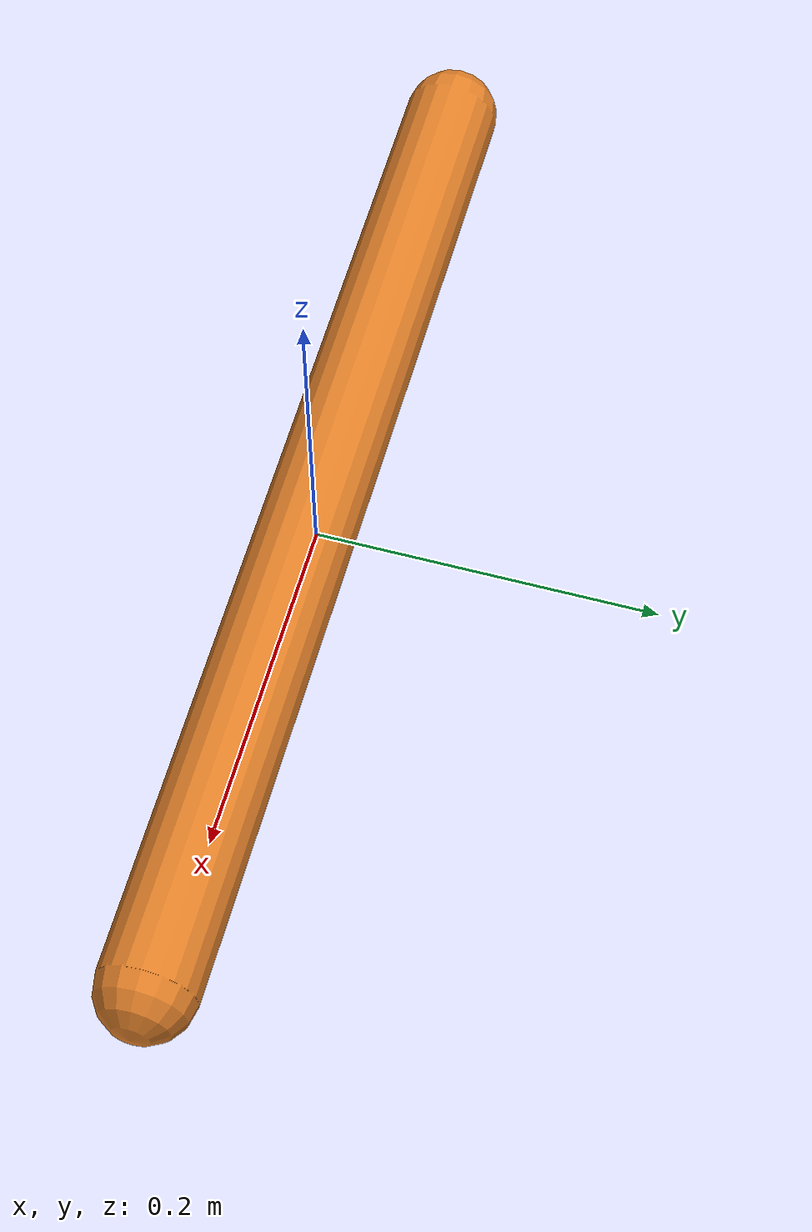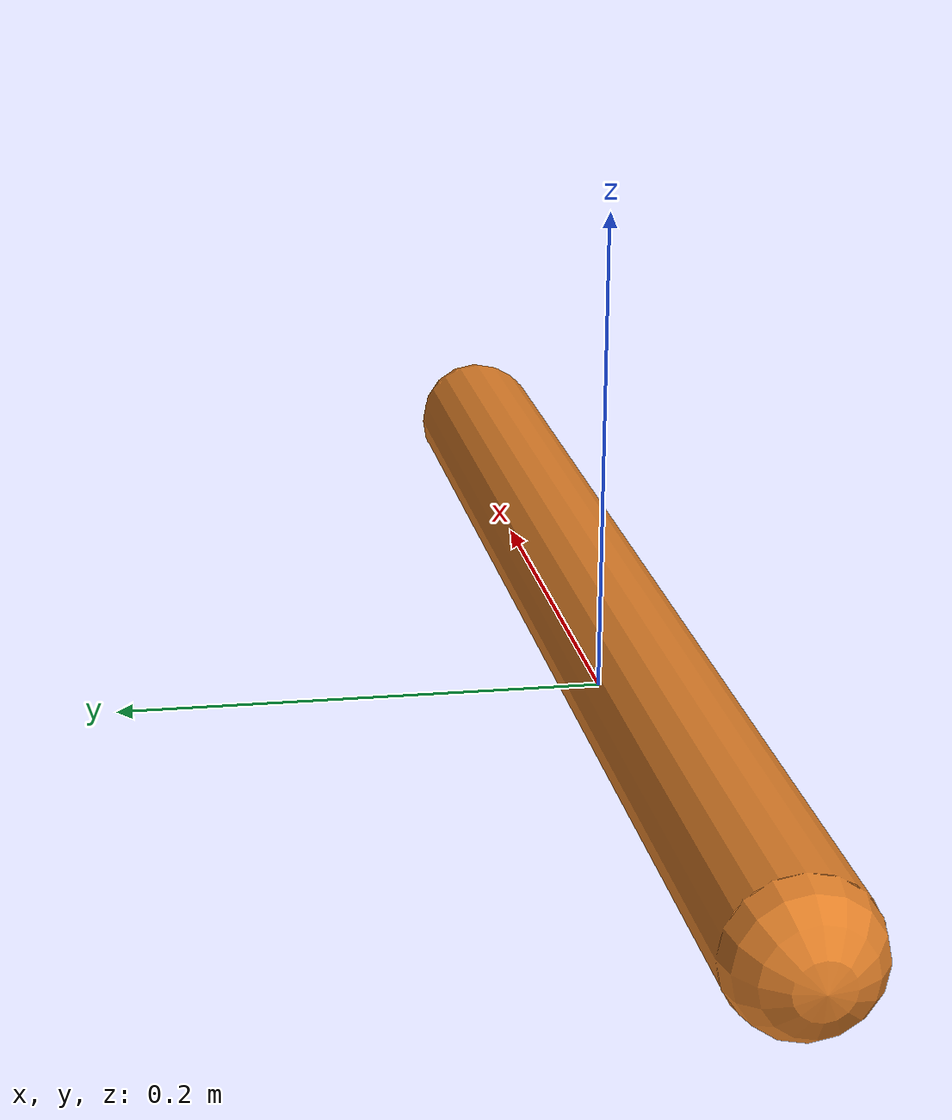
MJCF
<mujoco model="stick_prim_orange_28">
  <compiler angle="radian"/>
  <asset>
  </asset>
  <worldbody>
    <body name="stick_prim_orange_28">
      <freejoint/>
      <geom name="stick_prim_orange_28_g0" type="capsule" size="0.028" fromto="-0.297 0 0.028 0.297 0 0.028" rgba="0.88 0.5 0.16 1" mass="0.05" friction="0.05 0.05 0.005" condim="4"/>
    </body>
  </worldbody>
</mujoco>
